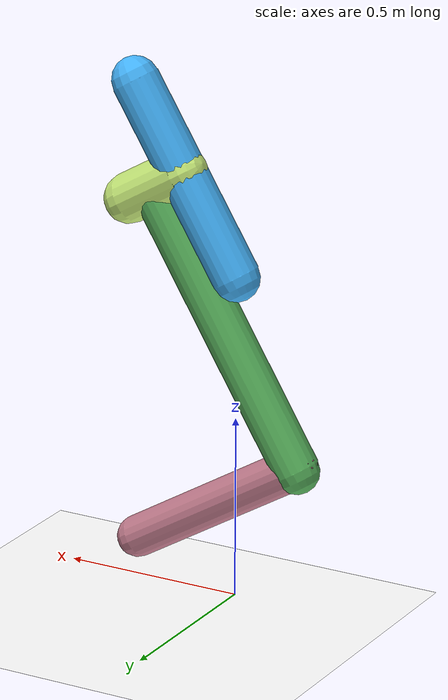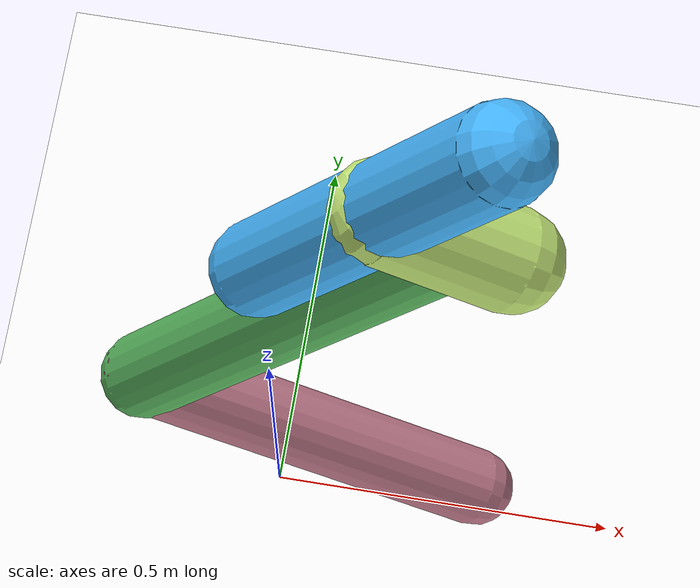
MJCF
<mujoco model="morphology">
  <option timestep="0.01"/>
  <default>
    <default class="/"/>
  </default>
  <asset>
    <texture name="texplane" type="2d" builtin="checker" rgb1="0.1 0.2 0.3" rgb2="0.2 0.3 0.4" width="300" height="300"/>
    <material name="MatPlane" class="/" texture="texplane" texrepeat="20 20" specular="1" shininess="1" reflectance="0.5"/>
  </asset>
  <worldbody>
    <light name="//unnamed_light_0" class="/" directional="true" pos="0 0 1.5" dir="0 0 -1.3" cutoff="1e+02" exponent="1" diffuse="1 1 1" specular="0.1 0.1 0.1"/>
    <geom name="ground" class="/" type="plane" size="15 15 0.5" material="MatPlane" rgba="1 1 1 1"/>
    <body name="body" pos="0 0 0.89">
      <geom name="geom0" class="/" type="capsule" contype="1" conaffinity="1" condim="3" size="0.064" rgba="0.27 0.71 0.99 1" friction="0.4 0.1 0.1" fromto="0 0 0 0.3 0 0.49"/>
      <body name="body1" pos="0.16 0 0.26">
        <geom name="geom1" class="/" type="capsule" contype="1" conaffinity="1" condim="3" size="0.068" rgba="0.79 0.93 0.48 1" friction="0.4 0.1 0.1" fromto="0 0 0 0.16 0 -0.094"/>
        <body name="body2" pos="0.087 0 -0.052">
          <geom name="geom2" class="/" type="capsule" contype="1" conaffinity="1" condim="3" size="0.062" rgba="0.35 0.71 0.37 1" friction="0.4 0.1 0.1" fromto="0 0 0 -0.43 0 -0.71"/>
          <body name="body3" pos="-0.43 0 -0.7">
            <geom name="geom3" class="/" type="capsule" contype="1" conaffinity="1" condim="3" size="0.057" rgba="0.77 0.49 0.56 1" friction="0.4 0.1 0.1" fromto="0 0 0 0.48 0 -0.29"/>
            <joint name="joint3" class="/" type="hinge" axis="0 1 0" limited="true" stiffness="20" range="-33 33" armature="0.1" damping="2"/>
          </body>
          <joint name="joint2" class="/" type="hinge" axis="0 1 0" limited="true" stiffness="20" range="-40 40" armature="0.1" damping="2"/>
        </body>
        <joint name="joint1" class="/" type="hinge" axis="0 1 0" limited="true" stiffness="20" range="-64 64" armature="0.1" damping="2"/>
      </body>
      <joint name="rootx" class="/" type="slide" axis="1 0 0" limited="false" stiffness="0" armature="0" damping="0"/>
      <joint name="rootz" class="/" type="slide" axis="0 0 1" limited="false" stiffness="0" armature="0" damping="0"/>
      <joint name="rooty" class="/" type="hinge" axis="0 1 0" limited="false" stiffness="0" armature="0" damping="0"/>
    </body>
  </worldbody>
  <actuator>
    <motor name="motor3" class="/" ctrllimited="true" ctrlrange="-1 1" gear="1.4e+02" joint="joint3"/>
    <motor name="motor2" class="/" ctrllimited="true" ctrlrange="-1 1" gear="1.4e+02" joint="joint2"/>
    <motor name="motor1" class="/" ctrllimited="true" ctrlrange="-1 1" gear="1.8e+02" joint="joint1"/>
  </actuator>
  <sensor>
    <subtreelinvel name="velocity" body="body"/>
  </sensor>
</mujoco>
